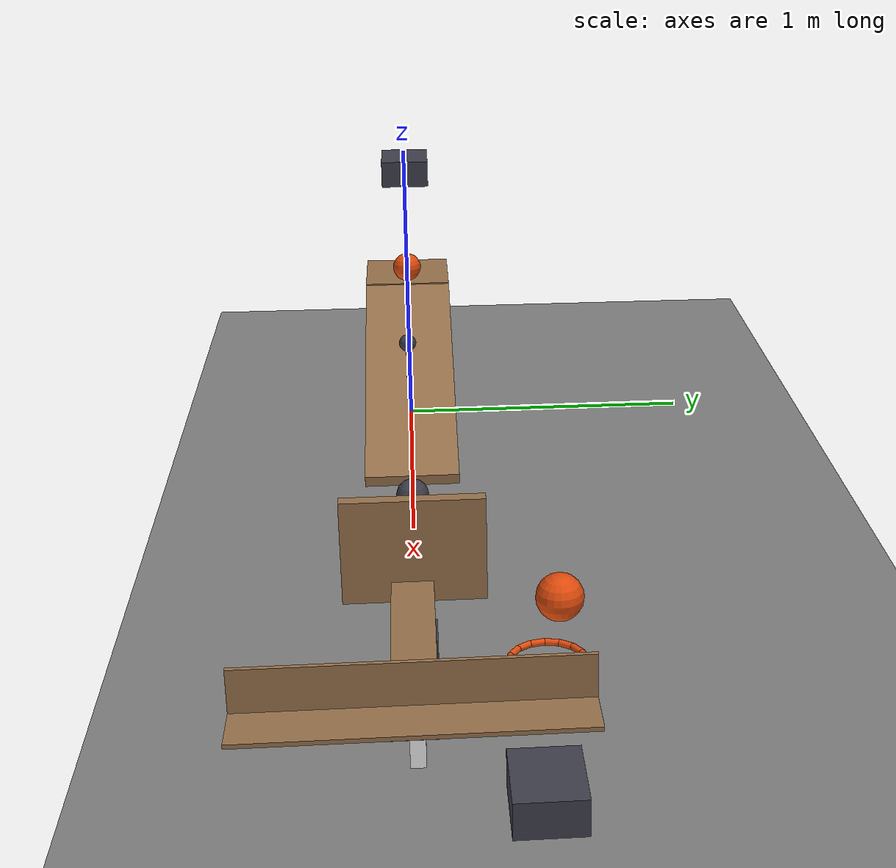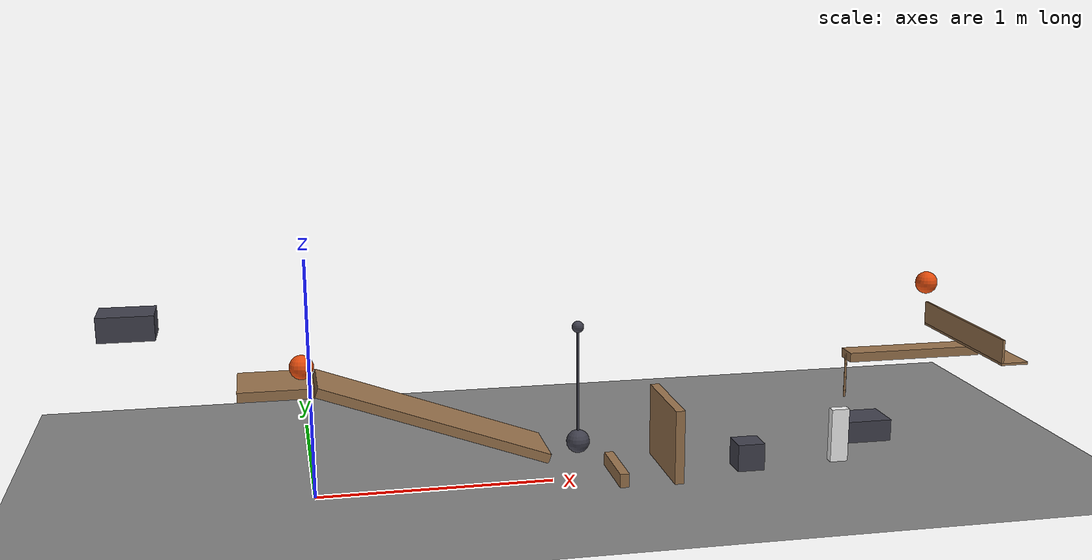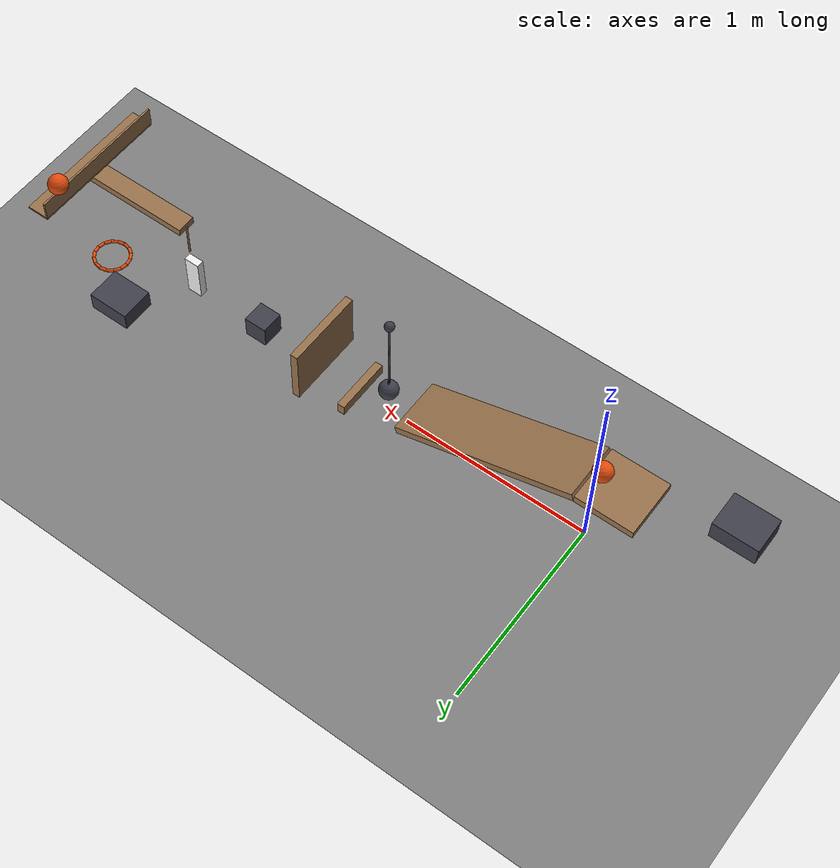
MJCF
<mujoco model="experimental_gravity_relay_revision">
  <compiler angle="radian"/>
  <option timestep="0.002"/>
  <worldbody>
    <geom name="floor" type="plane" size="6 6 0.1" friction="0.68 0.005 0.002"/>
    <body name="ramp1">
      <geom name="ramp1" type="box" pos="0.490153 0 0.32101" size="0.5 0.15 0.02" euler="0 0.349066 0" friction="0.68 0.005 0.002" solref="0.01 1" rgba="0.6 0.45 0.3 1"/>
    </body>
    <body name="launch pad">
      <geom name="launch pad" type="box" pos="-0.13654 0 0.490814" size="0.15 0.15 0.02" friction="0.68 0.005 0.002" solref="0.01 1" rgba="0.6 0.45 0.3 1"/>
    </body>
    <body name="cart1" pos="-34.8917 0 -93.1965">
      <joint name="cart1_axial_guide" type="hinge" pos="0 0 0" axis="0 1 0" limited="true" range="0 0.0174533" stiffness="180000" springref="0.00200001" damping="2000"/>
      <geom name="cart1" type="box" pos="34.202 0 93.9693" size="0.11 0.09 0.05" mass="0.5" friction="0.68 0.005 0.002" solref="0.01 1" rgba="0.25 0.25 0.3 1"/>
    </body>
    <body name="ball1" pos="-0.029693 0 0.560814">
      <freejoint/>
      <geom name="ball1" type="sphere" pos="0 0 0" size="0.05" mass="0.2" condim="6" friction="0.68 0.005 0.002" solref="0.01 1" rgba="0.9 0.3 0.05 1"/>
    </body>
    <body name="pendulum1" pos="1.11 0 0.67">
      <joint name="pendulum1_hinge" type="hinge" pos="0 0 0" axis="0 1 0" limited="true" range="-0.698132 0" damping="0.04" armature="0.1"/>
      <geom name="pendulum1" type="sphere" pos="0 0 -0.5" size="0.05" mass="0.01" friction="0.68 0.005 0.0001" solref="0.01 1" rgba="0.25 0.25 0.3 1"/>
      <geom name="pendulum rod" type="capsule" size="0.005" fromto="0 0 0 0 0 -0.45" mass="0.01" friction="0.68 0.005 0.0001" solref="0.01 1" rgba="0.25 0.25 0.3 1"/>
      <geom name="pendulum pivot weight" type="sphere" pos="0 0 0" size="0.025" mass="0.33" friction="0.68 0.005 0.0001" solref="0.01 1" rgba="0.25 0.25 0.3 1"/>
    </body>
    <body name="spent ball1 catcher">
      <geom name="spent ball1 catcher" type="box" pos="1.28 0 0.03" size="0.02 0.15 0.03" friction="0.68 0.005 0.0001" solref="0.01 1" rgba="0.6 0.45 0.3 1"/>
    </body>
    <body name="door1" pos="1.50139 0 0.02">
      <joint name="door1_hinge" type="hinge" pos="0 0 0" axis="0 1 0" limited="true" range="0 1.22173" damping="0.04"/>
      <geom name="door1" type="box" pos="0 0 0.16" size="0.02 0.21 0.16" mass="0.45" friction="0.68 0.005 0.0001" solref="0.01 1" rgba="0.6 0.45 0.3 1"/>
      <geom name="door gravity weight" type="sphere" pos="0 0 0.003" size="0.001" mass="3000" friction="0.68 0.005 0.0001" solref="0.01 1" rgba="0.25 0.25 0.3 1"/>
    </body>
    <body name="block1" pos="1.86813 0 0.06">
      <freejoint/>
      <geom name="block1" type="box" pos="0 0 0" size="0.06 0.06 0.06" mass="0.35" friction="0.68 0.005 0.002" solref="0.01 1" rgba="0.25 0.25 0.3 1"/>
    </body>
    <body name="domino1" pos="2.28813 0 0.12">
      <freejoint/>
      <geom name="domino1" type="box" pos="0 0 0" size="0.04 0.02 0.12" mass="0.25" friction="0.68 0.005 0.002" solref="0.01 1" rgba="0.95 0.95 0.95 1"/>
    </body>
    <body name="lever1" pos="2.60723 0 0.482394">
      <joint name="lever1_hinge" type="hinge" pos="0 0 0" axis="0 1 0" limited="true" range="-1.39626 -0.610865" stiffness="0.505" springref="-1.39626" damping="0.04"/>
      <geom name="lever1" type="box" pos="0 0 0" size="0.3 0.05 0.02" mass="0.485" friction="0.68 0.005 0.0001" solref="0.01 1" rgba="0.6 0.45 0.3 1"/>
      <geom name="lever strike finger" type="capsule" size="0.005" fromto="-0.3 0 0 -0.3 0 -0.185945" mass="0.005" friction="0.68 0.005 0.0001" solref="0.01 1" rgba="0.6 0.45 0.3 1"/>
      <geom name="lever tray base" type="box" pos="0.3 0 0.025" size="0.06 0.375 0.005" mass="0.005" friction="0.68 0.005 0.0001" solref="0.01 1" rgba="0.6 0.45 0.3 1"/>
      <geom name="lever tray inner wall" type="box" pos="0.244 0 0.08" size="0.005 0.375 0.05" mass="0.005" friction="0.68 0.005 0.0001" solref="0.01 1" rgba="0.6 0.45 0.3 1"/>
    </body>
    <body name="ball2" pos="2.80708 0.3 0.72">
      <freejoint/>
      <geom name="ball2" type="sphere" pos="0 0 0" size="0.05" mass="0.2" condim="6" friction="0.68 0.005 0.002" solref="0.01 1" rgba="0.9 0.3 0.05 1"/>
    </body>
    <body name="ring1">
      <geom name="ring1_00" type="capsule" size="0.008" fromto="2.61023 0.3 0.4 2.60353 0.333676 0.4" friction="0.68 0.005 0.0001" solref="0.01 1" rgba="0.9 0.3 0.05 1"/>
      <geom name="ring1_01" type="capsule" size="0.008" fromto="2.60353 0.333676 0.4 2.58445 0.362225 0.4" friction="0.68 0.005 0.0001" solref="0.01 1" rgba="0.9 0.3 0.05 1"/>
      <geom name="ring1_02" type="capsule" size="0.008" fromto="2.58445 0.362225 0.4 2.5559 0.381301 0.4" friction="0.68 0.005 0.0001" solref="0.01 1" rgba="0.9 0.3 0.05 1"/>
      <geom name="ring1_03" type="capsule" size="0.008" fromto="2.5559 0.381301 0.4 2.52223 0.388 0.4" friction="0.68 0.005 0.0001" solref="0.01 1" rgba="0.9 0.3 0.05 1"/>
      <geom name="ring1_04" type="capsule" size="0.008" fromto="2.52223 0.388 0.4 2.48855 0.381301 0.4" friction="0.68 0.005 0.0001" solref="0.01 1" rgba="0.9 0.3 0.05 1"/>
      <geom name="ring1_05" type="capsule" size="0.008" fromto="2.48855 0.381301 0.4 2.46 0.362225 0.4" friction="0.68 0.005 0.0001" solref="0.01 1" rgba="0.9 0.3 0.05 1"/>
      <geom name="ring1_06" type="capsule" size="0.008" fromto="2.46 0.362225 0.4 2.44092 0.333676 0.4" friction="0.68 0.005 0.0001" solref="0.01 1" rgba="0.9 0.3 0.05 1"/>
      <geom name="ring1_07" type="capsule" size="0.008" fromto="2.44092 0.333676 0.4 2.43423 0.3 0.4" friction="0.68 0.005 0.0001" solref="0.01 1" rgba="0.9 0.3 0.05 1"/>
      <geom name="ring1_08" type="capsule" size="0.008" fromto="2.43423 0.3 0.4 2.44092 0.266324 0.4" friction="0.68 0.005 0.0001" solref="0.01 1" rgba="0.9 0.3 0.05 1"/>
      <geom name="ring1_09" type="capsule" size="0.008" fromto="2.44092 0.266324 0.4 2.46 0.237775 0.4" friction="0.68 0.005 0.0001" solref="0.01 1" rgba="0.9 0.3 0.05 1"/>
      <geom name="ring1_10" type="capsule" size="0.008" fromto="2.46 0.237775 0.4 2.48855 0.218699 0.4" friction="0.68 0.005 0.0001" solref="0.01 1" rgba="0.9 0.3 0.05 1"/>
      <geom name="ring1_11" type="capsule" size="0.008" fromto="2.48855 0.218699 0.4 2.52223 0.212 0.4" friction="0.68 0.005 0.0001" solref="0.01 1" rgba="0.9 0.3 0.05 1"/>
      <geom name="ring1_12" type="capsule" size="0.008" fromto="2.52223 0.212 0.4 2.5559 0.218699 0.4" friction="0.68 0.005 0.0001" solref="0.01 1" rgba="0.9 0.3 0.05 1"/>
      <geom name="ring1_13" type="capsule" size="0.008" fromto="2.5559 0.218699 0.4 2.58445 0.237775 0.4" friction="0.68 0.005 0.0001" solref="0.01 1" rgba="0.9 0.3 0.05 1"/>
      <geom name="ring1_14" type="capsule" size="0.008" fromto="2.58445 0.237775 0.4 2.60353 0.266324 0.4" friction="0.68 0.005 0.0001" solref="0.01 1" rgba="0.9 0.3 0.05 1"/>
      <geom name="ring1_15" type="capsule" size="0.008" fromto="2.60353 0.266324 0.4 2.61023 0.3 0.4" friction="0.68 0.005 0.0001" solref="0.01 1" rgba="0.9 0.3 0.05 1"/>
    </body>
    <body name="cart2" pos="2.52223 100.3 0.05">
      <joint name="cart2_axial_guide" type="hinge" pos="0 0 0" axis="0 0 1" limited="true" range="-0.010472 0.010472" damping="2000"/>
      <geom name="cart2" type="box" pos="0 -100 0" size="0.11 0.09 0.05" mass="0.5" friction="0.68 0.005 0.002" solref="0.01 1" rgba="0.25 0.25 0.3 1"/>
    </body>
  </worldbody>
  <keyframe>
    <key name="start" qpos="0 -0.029693 0 0.560814 1 0 0 0 0 0 1.86813 0 0.06 1 0 0 0 2.28813 0 0.12 1 0 0 0 -0.610865 2.80708 0.3 0.72 1 0 0 0 0" qvel="0 0 0 0 0 0 0 0 0 0 0 0 0 0 0 0 0 0 0 0 0 0 0 0 0 0 0 0 0"/>
  </keyframe>
</mujoco>
